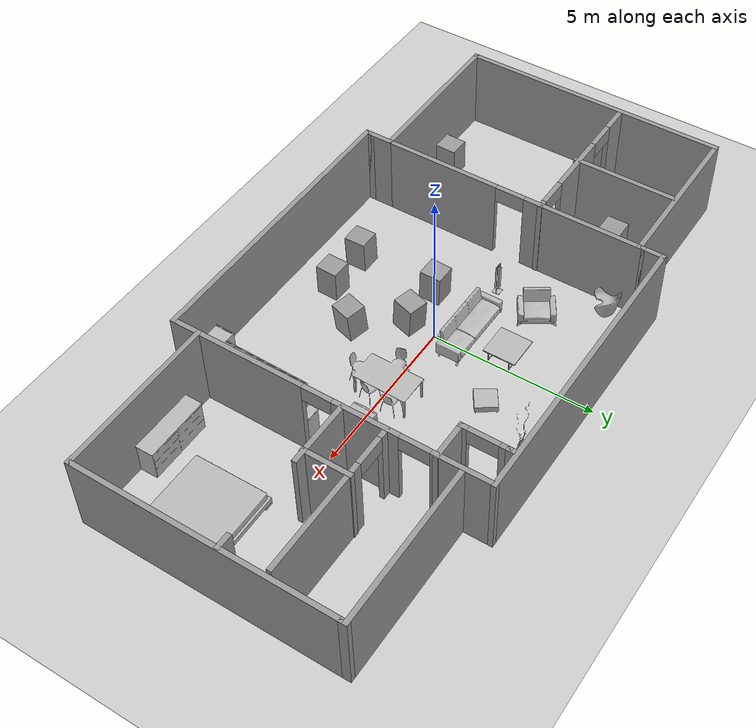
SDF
<sdf version="1.6">
 <world name="default">
  <light name="sun" type="directional">
   <pose>0 0 10 0 -0 0</pose>
   <diffuse>0.8 0.8 0.8 1</diffuse>
   <specular>0.2 0.2 0.2 1</specular>
   <attenuation>
    <range>1000</range>
    <constant>0.9</constant>
    <linear>0.01</linear>
    <quadratic>0.001</quadratic>
   </attenuation>
   <direction>-0.5 0.1 -0.9</direction>
  </light>
  <model name="ground_plane">
   <static>1</static>
   <link name="link">
    <collision name="collision">
     <geometry><plane><normal>0 0 1</normal><size>100 100</size></plane></geometry>
     <surface><friction><ode><mu>100</mu><mu2>50</mu2></ode></friction></surface>
    </collision>
    <visual name="visual">
     <cast_shadows>0</cast_shadows>
     <geometry><plane><normal>0 0 1</normal><size>100 100</size></plane></geometry>
     <material>
      <script><uri>file://media/materials/scripts/gazebo.material</uri><name>Gazebo/Grey</name></script>
     </material>
    </visual>
   </link>
  </model>
  <gravity>0 0 -9.8</gravity>
  <magnetic_field>6e-06 2.3e-05 -4.2e-05</magnetic_field>
  <atmosphere type="adiabatic"/>
  <physics name="default_physics" default="0" type="ode">
   <max_step_size>0.001</max_step_size>
   <real_time_factor>1</real_time_factor>
   <real_time_update_rate>1000</real_time_update_rate>
  </physics>
  <scene><ambient>0.4 0.4 0.4 1</ambient><background>0.7 0.7 0.7 1</background><shadows>1</shadows></scene>
  <spherical_coordinates>
   <surface_model>EARTH_WGS84</surface_model>
   <latitude_deg>0</latitude_deg>
   <longitude_deg>0</longitude_deg>
   <elevation>0</elevation>
   <heading_deg>0</heading_deg>
  </spherical_coordinates>
  <model name="house1">
   <pose>0.56665 0.024859 0 0 -0 0</pose>
   <link name="Wall_10">
    <collision name="Wall_10_Collision">
     <geometry><box><size>8.25 0.15 2.5</size></box></geometry>
     <pose>0 0 1.25 0 -0 0</pose>
    </collision>
    <visual name="Wall_10_Visual">
     <pose>0 0 1.25 0 -0 0</pose>
     <geometry><box><size>8.25 0.15 2.5</size></box></geometry>
     <material>
      <script><uri>file://media/materials/scripts/gazebo.material</uri><name>Gazebo/Grey</name></script>
      <ambient>1 1 1 1</ambient>
     </material>
     <meta><layer>0</layer></meta>
    </visual>
    <pose>-9.275 0.05 0 0 0 -1.5708</pose>
   </link>
   <link name="Wall_11">
    <collision name="Wall_11_Collision">
     <geometry><box><size>5 0.15 2.5</size></box></geometry>
     <pose>0 0 1.25 0 -0 0</pose>
    </collision>
    <visual name="Wall_11_Visual">
     <pose>0 0 1.25 0 -0 0</pose>
     <geometry><box><size>5 0.15 2.5</size></box></geometry>
     <material>
      <script><uri>file://media/materials/scripts/gazebo.material</uri><name>Gazebo/Grey</name></script>
      <ambient>1 1 1 1</ambient>
     </material>
     <meta><layer>0</layer></meta>
    </visual>
    <pose>-6.85 -4 0 0 -0 0</pose>
   </link>
   <link name="Wall_12">
    <collision name="Wall_12_Collision">
     <geometry><box><size>0.75 0.15 2.5</size></box></geometry>
     <pose>0 0 1.25 0 -0 0</pose>
    </collision>
    <visual name="Wall_12_Visual">
     <pose>0 0 1.25 0 -0 0</pose>
     <geometry><box><size>0.75 0.15 2.5</size></box></geometry>
     <material>
      <script><uri>file://media/materials/scripts/gazebo.material</uri><name>Gazebo/Grey</name></script>
      <ambient>1 1 1 1</ambient>
     </material>
     <meta><layer>0</layer></meta>
    </visual>
    <pose>-4.425 -4.3 0 0 0 -1.5708</pose>
   </link>
   <link name="Wall_13">
    <collision name="Wall_13_Collision">
     <geometry><box><size>0.25 0.15 2.5</size></box></geometry>
     <pose>0 0 1.25 0 -0 0</pose>
    </collision>
    <visual name="Wall_13_Visual">
     <pose>0 0 1.25 0 -0 0</pose>
     <geometry><box><size>0.25 0.15 2.5</size></box></geometry>
     <material>
      <script><uri>file://media/materials/scripts/gazebo.material</uri><name>Gazebo/Grey</name></script>
      <ambient>1 1 1 1</ambient>
     </material>
     <meta><layer>0</layer></meta>
    </visual>
    <pose>-4.425 -4.65 0 0 0 -1.5708</pose>
   </link>
   <link name="Wall_14">
    <collision name="Wall_14_Collision">
     <geometry><box><size>0.25 0.15 2.5</size></box></geometry>
     <pose>0 0 1.25 0 -0 0</pose>
    </collision>
    <visual name="Wall_14_Visual">
     <pose>0 0 1.25 0 -0 0</pose>
     <geometry><box><size>0.25 0.15 2.5</size></box></geometry>
     <material>
      <script><uri>file://media/materials/scripts/gazebo.material</uri><name>Gazebo/Grey</name></script>
      <ambient>1 1 1 1</ambient>
     </material>
     <meta><layer>0</layer></meta>
    </visual>
    <pose>-4.425 -4.75 0 0 0 -1.5708</pose>
   </link>
   <link name="Wall_15">
    <collision name="Wall_15_Collision">
     <geometry><box><size>9 0.15 2.5</size></box></geometry>
     <pose>0 0 1.25 0 -0 0</pose>
    </collision>
    <visual name="Wall_15_Visual">
     <pose>0 0 1.25 0 -0 0</pose>
     <geometry><box><size>9 0.15 2.5</size></box></geometry>
     <material>
      <script><uri>file://media/materials/scripts/gazebo.material</uri><name>Gazebo/Grey</name></script>
      <ambient>1 1 1 1</ambient>
     </material>
     <meta><layer>0</layer></meta>
    </visual>
    <pose>0 -4.8 0 0 -0 0</pose>
   </link>
   <link name="Wall_16">
    <pose>4.425 0 0 0 -0 1.5708</pose>
    <visual name="Wall_16_Visual_0">
     <pose>-2.80205 0 1.25 0 -0 0</pose>
     <geometry><box><size>4.14589 0.15 2.5</size></box></geometry>
     <material>
      <script><uri>file://media/materials/scripts/gazebo.material</uri><name>Gazebo/Grey</name></script>
      <ambient>1 1 1 1</ambient>
     </material>
     <meta><layer>0</layer></meta>
    </visual>
    <collision name="Wall_16_Collision_0">
     <geometry><box><size>4.14589 0.15 2.5</size></box></geometry>
     <pose>-2.80205 0 1.25 0 -0 0</pose>
    </collision>
    <visual name="Wall_16_Visual_1">
     <pose>1.15731 0 1.25 0 -0 0</pose>
     <geometry><box><size>1.97282 0.15 2.5</size></box></geometry>
     <material>
      <script><uri>file://media/materials/scripts/gazebo.material</uri><name>Gazebo/Grey</name></script>
      <ambient>1 1 1 1</ambient>
     </material>
     <meta><layer>0</layer></meta>
    </visual>
    <collision name="Wall_16_Collision_1">
     <geometry><box><size>1.97282 0.15 2.5</size></box></geometry>
     <pose>1.15731 0 1.25 0 -0 0</pose>
    </collision>
    <visual name="Wall_16_Visual_2">
     <pose>3.95936 0 1.25 0 -0 0</pose>
     <geometry><box><size>1.83128 0.15 2.5</size></box></geometry>
     <material>
      <script><uri>file://media/materials/scripts/gazebo.material</uri><name>Gazebo/Grey</name></script>
      <ambient>1 1 1 1</ambient>
     </material>
     <meta><layer>0</layer></meta>
    </visual>
    <collision name="Wall_16_Collision_2">
     <geometry><box><size>1.83128 0.15 2.5</size></box></geometry>
     <pose>3.95936 0 1.25 0 -0 0</pose>
    </collision>
    <visual name="Wall_16_Visual_3">
     <pose>-0.279106 0 2.25 0 -0 0</pose>
     <geometry><box><size>0.9 0.15 0.5</size></box></geometry>
     <material>
      <script><uri>file://media/materials/scripts/gazebo.material</uri><name>Gazebo/Grey</name></script>
      <ambient>1 1 1 1</ambient>
     </material>
     <meta><layer>0</layer></meta>
    </visual>
    <collision name="Wall_16_Collision_3">
     <geometry><box><size>0.9 0.15 0.5</size></box></geometry>
     <pose>-0.279106 0 2.25 0 -0 0</pose>
    </collision>
    <visual name="Wall_16_Visual_4">
     <pose>2.59372 0 2.25 0 -0 0</pose>
     <geometry><box><size>0.9 0.15 0.5</size></box></geometry>
     <material>
      <script><uri>file://media/materials/scripts/gazebo.material</uri><name>Gazebo/Grey</name></script>
      <ambient>1 1 1 1</ambient>
     </material>
     <meta><layer>0</layer></meta>
    </visual>
    <collision name="Wall_16_Collision_4">
     <geometry><box><size>0.9 0.15 0.5</size></box></geometry>
     <pose>2.59372 0 2.25 0 -0 0</pose>
    </collision>
   </link>
   <link name="Wall_18">
    <collision name="Wall_18_Collision">
     <geometry><box><size>2 0.15 2.5</size></box></geometry>
     <pose>0 0 1.25 0 -0 0</pose>
    </collision>
    <visual name="Wall_18_Visual">
     <pose>0 0 1.25 0 -0 0</pose>
     <geometry><box><size>2 0.15 2.5</size></box></geometry>
     <material>
      <script><uri>file://media/materials/scripts/gazebo.material</uri><name>Gazebo/Grey</name></script>
      <ambient>1 1 1 1</ambient>
     </material>
     <meta><layer>0</layer></meta>
    </visual>
    <pose>5.42036 0.473012 0 0 -0 0</pose>
   </link>
   <link name="Wall_20">
    <collision name="Wall_20_Collision">
     <geometry><box><size>5 0.15 2.5</size></box></geometry>
     <pose>0 0 1.25 0 -0 0</pose>
    </collision>
    <visual name="Wall_20_Visual">
     <pose>0 0 1.25 0 -0 0</pose>
     <geometry><box><size>5 0.15 2.5</size></box></geometry>
     <material>
      <script><uri>file://media/materials/scripts/gazebo.material</uri><name>Gazebo/Grey</name></script>
      <ambient>1 1 1 1</ambient>
     </material>
     <meta><layer>0</layer></meta>
    </visual>
    <pose>6.85 -3.99469 0 0 -0 0</pose>
   </link>
   <link name="Wall_21">
    <collision name="Wall_21_Collision">
     <geometry><box><size>8 0.15 2.5</size></box></geometry>
     <pose>0 0 1.25 0 -0 0</pose>
    </collision>
    <visual name="Wall_21_Visual">
     <pose>0 0 1.25 0 -0 0</pose>
     <geometry><box><size>8 0.15 2.5</size></box></geometry>
     <material>
      <script><uri>file://media/materials/scripts/gazebo.material</uri><name>Gazebo/Grey</name></script>
      <ambient>1 1 1 1</ambient>
     </material>
     <meta><layer>0</layer></meta>
    </visual>
    <pose>9.275 -0.069691 0 0 -0 1.5708</pose>
   </link>
   <link name="Wall_22">
    <collision name="Wall_22_Collision">
     <geometry><box><size>0.25 0.15 2.5</size></box></geometry>
     <pose>0 0 1.25 0 -0 0</pose>
    </collision>
    <visual name="Wall_22_Visual">
     <pose>0 0 1.25 0 -0 0</pose>
     <geometry><box><size>0.25 0.15 2.5</size></box></geometry>
     <material>
      <script><uri>file://media/materials/scripts/gazebo.material</uri><name>Gazebo/Grey</name></script>
      <ambient>1 1 1 1</ambient>
     </material>
     <meta><layer>0</layer></meta>
    </visual>
    <pose>9.275 3.90531 0 0 -0 1.5708</pose>
   </link>
   <link name="Wall_23">
    <collision name="Wall_23_Collision">
     <geometry><box><size>5 0.15 2.5</size></box></geometry>
     <pose>0 0 1.25 0 -0 0</pose>
    </collision>
    <visual name="Wall_23_Visual">
     <pose>0 0 1.25 0 -0 0</pose>
     <geometry><box><size>5 0.15 2.5</size></box></geometry>
     <material>
      <script><uri>file://media/materials/scripts/gazebo.material</uri><name>Gazebo/Grey</name></script>
      <ambient>1 1 1 1</ambient>
     </material>
     <meta><layer>0</layer></meta>
    </visual>
    <pose>6.85 3.95531 0 0 -0 3.14159</pose>
   </link>
   <link name="Wall_25">
    <collision name="Wall_25_Collision">
     <geometry><box><size>1.25 0.15 2.5</size></box></geometry>
     <pose>0 0 1.25 0 -0 0</pose>
    </collision>
    <visual name="Wall_25_Visual">
     <pose>0 0 1.25 0 -0 0</pose>
     <geometry><box><size>1.25 0.15 2.5</size></box></geometry>
     <material>
      <script><uri>file://media/materials/scripts/gazebo.material</uri><name>Gazebo/Grey</name></script>
      <ambient>1 1 1 1</ambient>
     </material>
     <meta><layer>0</layer></meta>
    </visual>
    <pose>3.91018 3.21696 0 0 -0 3.14159</pose>
   </link>
   <link name="Wall_26">
    <pose>3.36018 3.89196 0 0 -0 1.5708</pose>
    <visual name="Wall_26_Visual_0">
     <pose>-0.614115 0 1.25 0 -0 0</pose>
     <geometry><box><size>0.271769 0.15 2.5</size></box></geometry>
     <material>
      <script><uri>file://media/materials/scripts/gazebo.material</uri><name>Gazebo/Grey</name></script>
      <ambient>1 1 1 1</ambient>
     </material>
     <meta><layer>0</layer></meta>
    </visual>
    <collision name="Wall_26_Collision_0">
     <geometry><box><size>0.271769 0.15 2.5</size></box></geometry>
     <pose>-0.614115 0 1.25 0 -0 0</pose>
    </collision>
    <visual name="Wall_26_Visual_1">
     <pose>0.585885 0 1.25 0 -0 0</pose>
     <geometry><box><size>0.328231 0.15 2.5</size></box></geometry>
     <material>
      <script><uri>file://media/materials/scripts/gazebo.material</uri><name>Gazebo/Grey</name></script>
      <ambient>1 1 1 1</ambient>
     </material>
     <meta><layer>0</layer></meta>
    </visual>
    <collision name="Wall_26_Collision_1">
     <geometry><box><size>0.328231 0.15 2.5</size></box></geometry>
     <pose>0.585885 0 1.25 0 -0 0</pose>
    </collision>
    <visual name="Wall_26_Visual_2">
     <pose>-0.028231 0 2.25 0 -0 0</pose>
     <geometry><box><size>0.9 0.15 0.5</size></box></geometry>
     <material>
      <script><uri>file://media/materials/scripts/gazebo.material</uri><name>Gazebo/Grey</name></script>
      <ambient>1 1 1 1</ambient>
     </material>
     <meta><layer>0</layer></meta>
    </visual>
    <collision name="Wall_26_Collision_2">
     <geometry><box><size>0.9 0.15 0.5</size></box></geometry>
     <pose>-0.028231 0 2.25 0 -0 0</pose>
    </collision>
   </link>
   <link name="Wall_27">
    <collision name="Wall_27_Collision">
     <geometry><box><size>0.25 0.15 2.5</size></box></geometry>
     <pose>0 0 1.25 0 -0 0</pose>
    </collision>
    <visual name="Wall_27_Visual">
     <pose>0 0 1.25 0 -0 0</pose>
     <geometry><box><size>0.25 0.15 2.5</size></box></geometry>
     <material>
      <script><uri>file://media/materials/scripts/gazebo.material</uri><name>Gazebo/Grey</name></script>
      <ambient>1 1 1 1</ambient>
     </material>
     <meta><layer>0</layer></meta>
    </visual>
    <pose>3.36018 4.61696 0 0 -0 1.5708</pose>
   </link>
   <link name="Wall_29">
    <pose>-4.425 0.05 0 0 0 -1.5708</pose>
    <visual name="Wall_29_Visual_0">
     <pose>-2.29321 0 1.25 0 -0 0</pose>
     <geometry><box><size>3.66357 0.15 2.5</size></box></geometry>
     <material>
      <script><uri>file://media/materials/scripts/gazebo.material</uri><name>Gazebo/Grey</name></script>
      <ambient>1 1 1 1</ambient>
     </material>
     <meta><layer>0</layer></meta>
    </visual>
    <collision name="Wall_29_Collision_0">
     <geometry><box><size>3.66357 0.15 2.5</size></box></geometry>
     <pose>-2.29321 0 1.25 0 -0 0</pose>
    </collision>
    <visual name="Wall_29_Visual_1">
     <pose>2.28179 0 1.25 0 -0 0</pose>
     <geometry><box><size>3.68643 0.15 2.5</size></box></geometry>
     <material>
      <script><uri>file://media/materials/scripts/gazebo.material</uri><name>Gazebo/Grey</name></script>
      <ambient>1 1 1 1</ambient>
     </material>
     <meta><layer>0</layer></meta>
    </visual>
    <collision name="Wall_29_Collision_1">
     <geometry><box><size>3.68643 0.15 2.5</size></box></geometry>
     <pose>2.28179 0 1.25 0 -0 0</pose>
    </collision>
    <visual name="Wall_29_Visual_2">
     <pose>-0.011427 0 2.25 0 -0 0</pose>
     <geometry><box><size>0.9 0.15 0.5</size></box></geometry>
     <material>
      <script><uri>file://media/materials/scripts/gazebo.material</uri><name>Gazebo/Grey</name></script>
      <ambient>1 1 1 1</ambient>
     </material>
     <meta><layer>0</layer></meta>
    </visual>
    <collision name="Wall_29_Collision_2">
     <geometry><box><size>0.9 0.15 0.5</size></box></geometry>
     <pose>-0.011427 0 2.25 0 -0 0</pose>
    </collision>
   </link>
   <link name="Wall_3">
    <collision name="Wall_3_Collision">
     <geometry><box><size>9 0.15 2.5</size></box></geometry>
     <pose>0 0 1.25 0 -0 0</pose>
    </collision>
    <visual name="Wall_3_Visual">
     <pose>0 0 1.25 0 -0 0</pose>
     <geometry><box><size>9 0.15 2.5</size></box></geometry>
     <material>
      <script><uri>file://media/materials/scripts/gazebo.material</uri><name>Gazebo/Grey</name></script>
      <ambient>1 1 1 1</ambient>
     </material>
     <meta><layer>0</layer></meta>
    </visual>
    <pose>0 4.8 0 0 -0 3.14159</pose>
   </link>
   <link name="Wall_31">
    <pose>-6.83454 1.03587 0 0 -0 0</pose>
    <visual name="Wall_31_Visual_0">
     <pose>-2.03932 0 1.25 0 -0 0</pose>
     <geometry><box><size>0.921362 0.15 2.5</size></box></geometry>
     <material>
      <script><uri>file://media/materials/scripts/gazebo.material</uri><name>Gazebo/Grey</name></script>
      <ambient>1 1 1 1</ambient>
     </material>
     <meta><layer>0</layer></meta>
    </visual>
    <collision name="Wall_31_Collision_0">
     <geometry><box><size>0.921362 0.15 2.5</size></box></geometry>
     <pose>-2.03932 0 1.25 0 -0 0</pose>
    </collision>
    <visual name="Wall_31_Visual_1">
     <pose>0.323037 0 1.25 0 -0 0</pose>
     <geometry><box><size>2.00335 0.15 2.5</size></box></geometry>
     <material>
      <script><uri>file://media/materials/scripts/gazebo.material</uri><name>Gazebo/Grey</name></script>
      <ambient>1 1 1 1</ambient>
     </material>
     <meta><layer>0</layer></meta>
    </visual>
    <collision name="Wall_31_Collision_1">
     <geometry><box><size>2.00335 0.15 2.5</size></box></geometry>
     <pose>0.323037 0 1.25 0 -0 0</pose>
    </collision>
    <visual name="Wall_31_Visual_2">
     <pose>2.36236 0 1.25 0 -0 0</pose>
     <geometry><box><size>0.275288 0.15 2.5</size></box></geometry>
     <material>
      <script><uri>file://media/materials/scripts/gazebo.material</uri><name>Gazebo/Grey</name></script>
      <ambient>1 1 1 1</ambient>
     </material>
     <meta><layer>0</layer></meta>
    </visual>
    <collision name="Wall_31_Collision_2">
     <geometry><box><size>0.275288 0.15 2.5</size></box></geometry>
     <pose>2.36236 0 1.25 0 -0 0</pose>
    </collision>
    <visual name="Wall_31_Visual_3">
     <pose>-1.12864 0 2.25 0 -0 0</pose>
     <geometry><box><size>0.9 0.15 0.5</size></box></geometry>
     <material>
      <script><uri>file://media/materials/scripts/gazebo.material</uri><name>Gazebo/Grey</name></script>
      <ambient>1 1 1 1</ambient>
     </material>
     <meta><layer>0</layer></meta>
    </visual>
    <collision name="Wall_31_Collision_3">
     <geometry><box><size>0.9 0.15 0.5</size></box></geometry>
     <pose>-1.12864 0 2.25 0 -0 0</pose>
    </collision>
    <visual name="Wall_31_Visual_4">
     <pose>1.77471 0 2.25 0 -0 0</pose>
     <geometry><box><size>0.9 0.15 0.5</size></box></geometry>
     <material>
      <script><uri>file://media/materials/scripts/gazebo.material</uri><name>Gazebo/Grey</name></script>
      <ambient>1 1 1 1</ambient>
     </material>
     <meta><layer>0</layer></meta>
    </visual>
    <collision name="Wall_31_Collision_4">
     <geometry><box><size>0.9 0.15 0.5</size></box></geometry>
     <pose>1.77471 0 2.25 0 -0 0</pose>
    </collision>
   </link>
   <link name="Wall_35">
    <collision name="Wall_35_Collision">
     <geometry><box><size>3.25 0.15 2.5</size></box></geometry>
     <pose>0 0 1.25 0 -0 0</pose>
    </collision>
    <visual name="Wall_35_Visual">
     <pose>0 0 1.25 0 -0 0</pose>
     <geometry><box><size>3.25 0.15 2.5</size></box></geometry>
     <material>
      <script><uri>file://media/materials/scripts/gazebo.material</uri><name>Gazebo/Grey</name></script>
      <ambient>1 1 1 1</ambient>
     </material>
     <meta><layer>0</layer></meta>
    </visual>
    <pose>-6.65631 2.51552 0 0 -0 1.5708</pose>
   </link>
   <link name="Wall_38">
    <collision name="Wall_38_Collision">
     <geometry><box><size>0.5 0.15 2.5</size></box></geometry>
     <pose>0 0 1.25 0 -0 0</pose>
    </collision>
    <visual name="Wall_38_Visual">
     <pose>0 0 1.25 0 -0 0</pose>
     <geometry><box><size>0.5 0.15 2.5</size></box></geometry>
     <material>
      <script><uri>file://media/materials/scripts/gazebo.material</uri><name>Gazebo/Grey</name></script>
      <ambient>1 1 1 1</ambient>
     </material>
     <meta><layer>0</layer></meta>
    </visual>
    <pose>9.06949 0.437834 0 0 -0 3.14159</pose>
   </link>
   <link name="Wall_40">
    <pose>6.76018 1.77463 0 0 -0 0</pose>
    <visual name="Wall_40_Visual_0">
     <pose>-2.19974 0 1.25 0 -0 0</pose>
     <geometry><box><size>0.350521 0.15 2.5</size></box></geometry>
     <material>
      <script><uri>file://media/materials/scripts/gazebo.material</uri><name>Gazebo/Grey</name></script>
      <ambient>1 1 1 1</ambient>
     </material>
     <meta><layer>0</layer></meta>
    </visual>
    <collision name="Wall_40_Collision_0">
     <geometry><box><size>0.350521 0.15 2.5</size></box></geometry>
     <pose>-2.19974 0 1.25 0 -0 0</pose>
    </collision>
    <visual name="Wall_40_Visual_1">
     <pose>0.625261 0 1.25 0 -0 0</pose>
     <geometry><box><size>3.49948 0.15 2.5</size></box></geometry>
     <material>
      <script><uri>file://media/materials/scripts/gazebo.material</uri><name>Gazebo/Grey</name></script>
      <ambient>1 1 1 1</ambient>
     </material>
     <meta><layer>0</layer></meta>
    </visual>
    <collision name="Wall_40_Collision_1">
     <geometry><box><size>3.49948 0.15 2.5</size></box></geometry>
     <pose>0.625261 0 1.25 0 -0 0</pose>
    </collision>
    <visual name="Wall_40_Visual_2">
     <pose>-1.57448 0 2.25 0 -0 0</pose>
     <geometry><box><size>0.9 0.15 0.5</size></box></geometry>
     <material>
      <script><uri>file://media/materials/scripts/gazebo.material</uri><name>Gazebo/Grey</name></script>
      <ambient>1 1 1 1</ambient>
     </material>
     <meta><layer>0</layer></meta>
    </visual>
    <collision name="Wall_40_Collision_2">
     <geometry><box><size>0.9 0.15 0.5</size></box></geometry>
     <pose>-1.57448 0 2.25 0 -0 0</pose>
    </collision>
   </link>
   <link name="Wall_50">
    <collision name="Wall_50_Collision">
     <geometry><box><size>1.5 0.15 2.5</size></box></geometry>
     <pose>0 0 1.25 0 -0 0</pose>
    </collision>
    <visual name="Wall_50_Visual">
     <pose>0 0 1.25 0 -0 0</pose>
     <geometry><box><size>1.5 0.15 2.5</size></box></geometry>
     <material>
      <script><uri>file://media/materials/scripts/gazebo.material</uri><name>Gazebo/Grey</name></script>
      <ambient>1 1 1 1</ambient>
     </material>
     <meta><layer>0</layer></meta>
    </visual>
    <pose>6.01545 1.12702 0 0 -0 1.5708</pose>
   </link>
   <link name="Wall_6">
    <collision name="Wall_6_Collision">
     <geometry><box><size>0.75 0.15 2.5</size></box></geometry>
     <pose>0 0 1.25 0 -0 0</pose>
    </collision>
    <visual name="Wall_6_Visual">
     <pose>0 0 1.25 0 -0 0</pose>
     <geometry><box><size>0.75 0.15 2.5</size></box></geometry>
     <material>
      <script><uri>file://media/materials/scripts/gazebo.material</uri><name>Gazebo/Grey</name></script>
      <ambient>1 1 1 1</ambient>
     </material>
     <meta><layer>0</layer></meta>
    </visual>
    <pose>-4.425 4.5 0 0 0 -1.5708</pose>
   </link>
   <link name="Wall_7">
    <collision name="Wall_7_Collision">
     <geometry><box><size>0.15 0.15 2.5</size></box></geometry>
     <pose>0 0 1.25 0 -0 0</pose>
    </collision>
    <visual name="Wall_7_Visual">
     <pose>0 0 1.25 0 -0 0</pose>
     <geometry><box><size>0.15 0.15 2.5</size></box></geometry>
     <material>
      <script><uri>file://media/materials/scripts/gazebo.material</uri><name>Gazebo/Grey</name></script>
      <ambient>1 1 1 1</ambient>
     </material>
     <meta><layer>0</layer></meta>
    </visual>
    <pose>-4.425 4.2 0 0 -0 0</pose>
   </link>
   <link name="Wall_8">
    <collision name="Wall_8_Collision">
     <geometry><box><size>0.25 0.15 2.5</size></box></geometry>
     <pose>0 0 1.25 0 -0 0</pose>
    </collision>
    <visual name="Wall_8_Visual">
     <pose>0 0 1.25 0 -0 0</pose>
     <geometry><box><size>0.25 0.15 2.5</size></box></geometry>
     <material>
      <script><uri>file://media/materials/scripts/gazebo.material</uri><name>Gazebo/Grey</name></script>
      <ambient>1 1 1 1</ambient>
     </material>
     <meta><layer>0</layer></meta>
    </visual>
    <pose>-4.425 4.15 0 0 0 -1.5708</pose>
   </link>
   <link name="Wall_9">
    <collision name="Wall_9_Collision">
     <geometry><box><size>5 0.15 2.5</size></box></geometry>
     <pose>0 0 1.25 0 -0 0</pose>
    </collision>
    <visual name="Wall_9_Visual">
     <pose>0 0 1.25 0 -0 0</pose>
     <geometry><box><size>5 0.15 2.5</size></box></geometry>
     <material>
      <script><uri>file://media/materials/scripts/gazebo.material</uri><name>Gazebo/Grey</name></script>
      <ambient>1 1 1 1</ambient>
     </material>
     <meta><layer>0</layer></meta>
    </visual>
    <pose>-6.85 4.1 0 0 -0 3.14159</pose>
   </link>
   <static>1</static>
  </model>
  <model name="livingroom">
   <static>1</static>
   <link name="body">
    <visual name="visual">
     <geometry><mesh><uri>model://blueprint_exploration/worlds/models/livingroom2.dae</uri></mesh></geometry>
    </visual>
    <collision name="collision">
     <geometry><mesh><uri>model://blueprint_exploration/worlds/models/livingroom2.dae</uri></mesh></geometry>
    </collision>
   </link>
   <pose>-0.63137 1.99494 0 0 -0 3.14</pose>
  </model>
  <model name="bedroom2">
   <static>1</static>
   <link name="body">
    <visual name="visual">
     <geometry><mesh><uri>model://blueprint_exploration/worlds/models/bedroom2.dae</uri></mesh></geometry>
    </visual>
    <collision name="collision">
     <geometry><mesh><uri>model://blueprint_exploration/worlds/models/bedroom2.dae</uri></mesh></geometry>
    </collision>
   </link>
   <pose>7.07962 -0.893165 0 0 0 -1.5634</pose>
  </model>
  <model name="kitchen">
   <static>1</static>
   <link name="body">
    <visual name="visual">
     <geometry><mesh><uri>model://blueprint_exploration/worlds/models/kitchen.dae</uri></mesh></geometry>
    </visual>
    <collision name="collision">
     <geometry><mesh><uri>model://blueprint_exploration/worlds/models/kitchen.dae</uri></mesh></geometry>
    </collision>
   </link>
   <pose>5.88802 -0.783319 0 0 0 -1.58524</pose>
  </model>
  <audio><device>default</device></audio>
  <model name="unit_box">
   <pose>0.008174 -3.40104 0.5 0 0 -0.017465</pose>
   <link name="link">
    <inertial>
     <mass>1</mass>
     <inertia>
      <ixx>0.166667</ixx>
      <ixy>0</ixy>
      <ixz>0</ixz>
      <iyy>0.166667</iyy>
      <iyz>0</iyz>
      <izz>0.166667</izz>
     </inertia>
    </inertial>
    <collision name="collision"><geometry><box><size>0.620516 0.661252 1</size></box></geometry></collision>
    <visual name="visual">
     <geometry><box><size>0.620516 0.661252 1</size></box></geometry>
     <material>
      <script><name>Gazebo/Grey</name><uri>file://media/materials/scripts/gazebo.material</uri></script>
     </material>
    </visual>
   </link>
  </model>
  <model name="unit_box_clone">
   <pose>-1.37601 -3.37702 0.509282 0.028702 -0 -0.006193</pose>
   <link name="link">
    <inertial>
     <mass>1</mass>
     <inertia>
      <ixx>0.166667</ixx>
      <ixy>0</ixy>
      <ixz>0</ixz>
      <iyy>0.166667</iyy>
      <iyz>0</iyz>
      <izz>0.166667</izz>
     </inertia>
    </inertial>
    <collision name="collision"><geometry><box><size>0.620516 0.661252 1</size></box></geometry></collision>
    <visual name="visual">
     <geometry><box><size>0.620516 0.661252 1</size></box></geometry>
     <material>
      <script><name>Gazebo/Grey</name><uri>file://media/materials/scripts/gazebo.material</uri></script>
     </material>
    </visual>
   </link>
  </model>
  <model name="unit_box_clone_0">
   <pose>-5.52461 2.5605 0.5 0 -0 2.2e-05</pose>
   <link name="link">
    <inertial>
     <mass>1</mass>
     <inertia>
      <ixx>0.166667</ixx>
      <ixy>0</ixy>
      <ixz>0</ixz>
      <iyy>0.166667</iyy>
      <iyz>0</iyz>
      <izz>0.166667</izz>
     </inertia>
    </inertial>
    <collision name="collision"><geometry><box><size>0.898717 0.661254 1</size></box></geometry></collision>
    <visual name="visual">
     <geometry><box><size>0.898717 0.661254 1</size></box></geometry>
     <material>
      <script><name>Gazebo/Grey</name><uri>file://media/materials/scripts/gazebo.material</uri></script>
     </material>
    </visual>
   </link>
  </model>
  <model name="unit_box_clone_0_clone">
   <pose>-6.8242 2.56061 0.499999 -3e-06 1e-06 -1e-05</pose>
   <link name="link">
    <inertial>
     <mass>1</mass>
     <inertia>
      <ixx>0.166667</ixx>
      <ixy>0</ixy>
      <ixz>0</ixz>
      <iyy>0.166667</iyy>
      <iyz>0</iyz>
      <izz>0.166667</izz>
     </inertia>
    </inertial>
    <collision name="collision"><geometry><box><size>1.24481 0.661254 1</size></box></geometry></collision>
    <visual name="visual">
     <geometry><box><size>1.24481 0.661254 1</size></box></geometry>
     <material>
      <script><name>Gazebo/Grey</name><uri>file://media/materials/scripts/gazebo.material</uri></script>
     </material>
    </visual>
   </link>
  </model>
  <model name="unit_box_clone_1">
   <pose>-1.38269 -0.838789 0.511642 -0.036212 -0 -0.006193</pose>
   <link name="link">
    <inertial>
     <mass>1</mass>
     <inertia>
      <ixx>0.166667</ixx>
      <ixy>0</ixy>
      <ixz>0</ixz>
      <iyy>0.166667</iyy>
      <iyz>0</iyz>
      <izz>0.166667</izz>
     </inertia>
    </inertial>
    <collision name="collision"><geometry><box><size>0.620516 0.661252 1</size></box></geometry></collision>
    <visual name="visual">
     <geometry><box><size>0.620516 0.661252 1</size></box></geometry>
     <material>
      <script><name>Gazebo/Grey</name><uri>file://media/materials/scripts/gazebo.material</uri></script>
     </material>
    </visual>
   </link>
  </model>
  <model name="unit_box_clone_2">
   <pose>0.007699 -0.797733 0.52318 -0.074356 -0 -0.240227</pose>
   <link name="link">
    <inertial>
     <mass>1</mass>
     <inertia>
      <ixx>0.166667</ixx>
      <ixy>0</ixy>
      <ixz>0</ixz>
      <iyy>0.166667</iyy>
      <iyz>0</iyz>
      <izz>0.166667</izz>
     </inertia>
    </inertial>
    <collision name="collision"><geometry><box><size>0.620516 0.661252 1</size></box></geometry></collision>
    <visual name="visual">
     <geometry><box><size>0.620516 0.661252 1</size></box></geometry>
     <material>
      <script><name>Gazebo/Grey</name><uri>file://media/materials/scripts/gazebo.material</uri></script>
     </material>
    </visual>
   </link>
  </model>
  <model name="unit_box_clone_3">
   <pose>1.04216 -2.09039 0.527622 0 0.096712 -0.283099</pose>
   <link name="link">
    <inertial>
     <mass>1</mass>
     <inertia>
      <ixx>0.166667</ixx>
      <ixy>0</ixy>
      <ixz>0</ixz>
      <iyy>0.166667</iyy>
      <iyz>0</iyz>
      <izz>0.166667</izz>
     </inertia>
    </inertial>
    <collision name="collision"><geometry><box><size>0.620516 0.661252 1</size></box></geometry></collision>
    <visual name="visual">
     <geometry><box><size>0.620516 0.661252 1</size></box></geometry>
     <material>
      <script><name>Gazebo/Grey</name><uri>file://media/materials/scripts/gazebo.material</uri></script>
     </material>
    </visual>
   </link>
  </model>
  <model name="unit_box_clone_4">
   <pose>-6.23233 -3.34775 0.5 0 -0 -0.017465</pose>
   <link name="link">
    <inertial>
     <mass>1</mass>
     <inertia>
      <ixx>0.166667</ixx>
      <ixy>0</ixy>
      <ixz>0</ixz>
      <iyy>0.166667</iyy>
      <iyz>0</iyz>
      <izz>0.166667</izz>
     </inertia>
    </inertial>
    <collision name="collision"><geometry><box><size>0.620516 0.661252 1</size></box></geometry></collision>
    <visual name="visual">
     <geometry><box><size>0.620516 0.661252 1</size></box></geometry>
     <material>
      <script><name>Gazebo/Grey</name><uri>file://media/materials/scripts/gazebo.material</uri></script>
     </material>
    </visual>
   </link>
  </model>
 </world>
</sdf>
